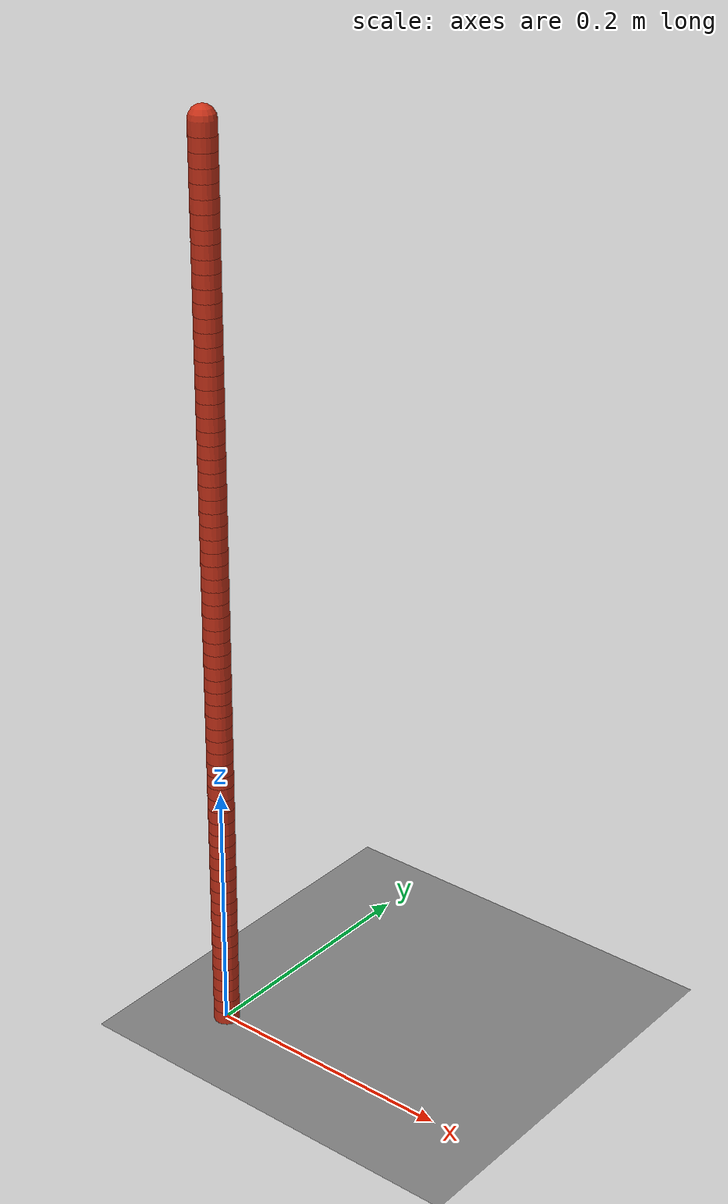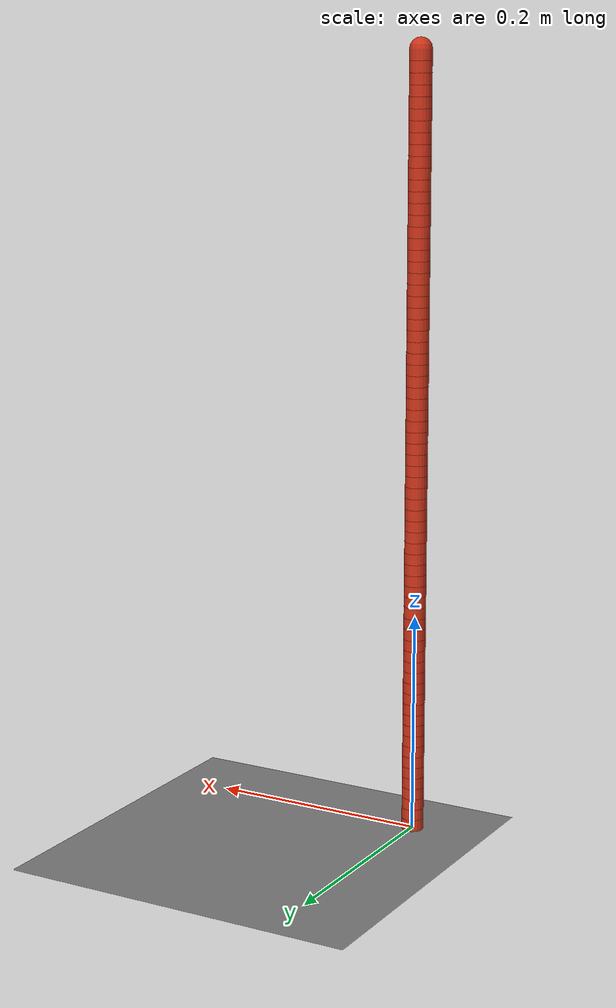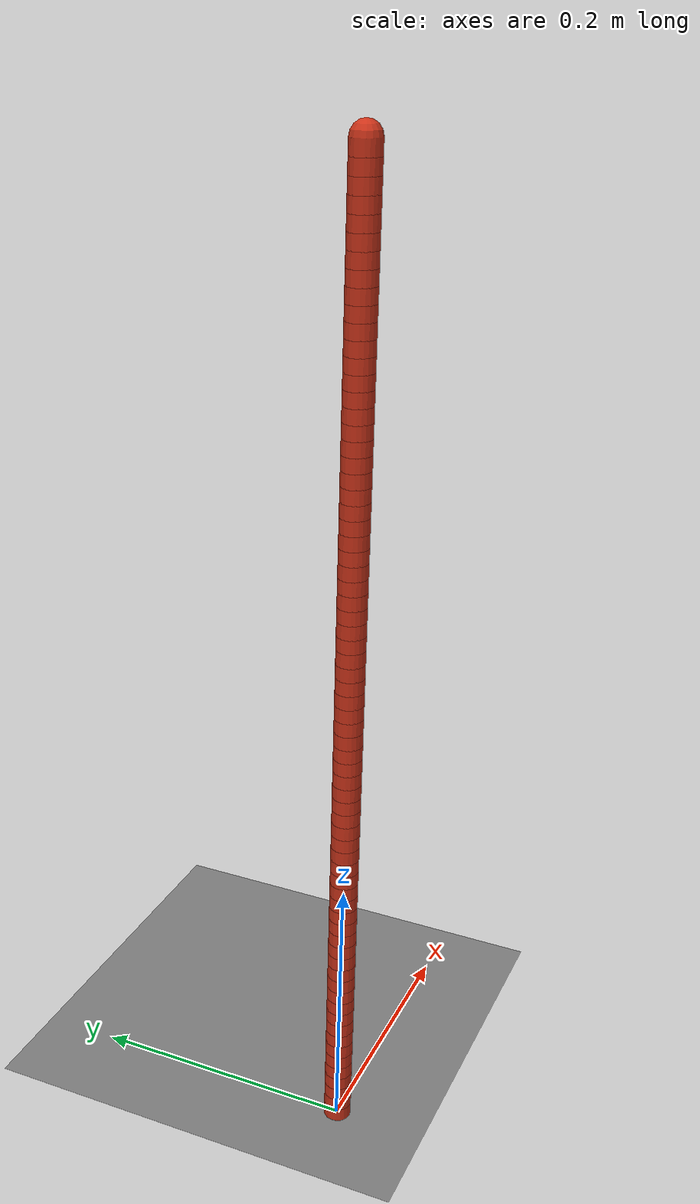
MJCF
<mujoco model="RopeNoComposite">
  <size nconmax="2000" njmax="20000" nstack="500000"/>

  <worldbody>
    <geom name="ground" type="plane" size="0 0 1"/>
      <body name="link_0" pos="0 0 0">
        <freejoint/>
        <geom type="capsule" fromto="0 0 0  0 0 0.01" size="0.01" friction="2.0 0.1 0.01" rgba="0.8 0.2 0.1 1"/>
        <body name="link_1" pos="0 0 0.01">
          <joint name="j_1" type="ball" damping="0.005"/>
          <geom type="capsule" fromto="0 0 0  0 0 0.01" size="0.01" friction="2.0 0.1 0.01" rgba="0.8 0.2 0.1 1"/>
          <body name="link_2" pos="0 0 0.01">
            <joint name="j_2" type="ball" damping="0.005"/>
            <geom type="capsule" fromto="0 0 0  0 0 0.01" size="0.01" friction="2.0 0.1 0.01" rgba="0.8 0.2 0.1 1"/>
            <body name="link_3" pos="0 0 0.01">
              <joint name="j_3" type="ball" damping="0.005"/>
              <geom type="capsule" fromto="0 0 0  0 0 0.01" size="0.01" friction="2.0 0.1 0.01" rgba="0.8 0.2 0.1 1"/>
              <body name="link_4" pos="0 0 0.01">
                <joint name="j_4" type="ball" damping="0.005"/>
                <geom type="capsule" fromto="0 0 0  0 0 0.01" size="0.01" friction="2.0 0.1 0.01" rgba="0.8 0.2 0.1 1"/>
                <body name="link_5" pos="0 0 0.01">
                  <joint name="j_5" type="ball" damping="0.005"/>
                  <geom type="capsule" fromto="0 0 0  0 0 0.01" size="0.01" friction="2.0 0.1 0.01" rgba="0.8 0.2 0.1 1"/>
                  <body name="link_6" pos="0 0 0.01">
                    <joint name="j_6" type="ball" damping="0.005"/>
                    <geom type="capsule" fromto="0 0 0  0 0 0.01" size="0.01" friction="2.0 0.1 0.01" rgba="0.8 0.2 0.1 1"/>
                    <body name="link_7" pos="0 0 0.01">
                      <joint name="j_7" type="ball" damping="0.005"/>
                      <geom type="capsule" fromto="0 0 0  0 0 0.01" size="0.01" friction="2.0 0.1 0.01" rgba="0.8 0.2 0.1 1"/>
                      <body name="link_8" pos="0 0 0.01">
                        <joint name="j_8" type="ball" damping="0.005"/>
                        <geom type="capsule" fromto="0 0 0  0 0 0.01" size="0.01" friction="2.0 0.1 0.01" rgba="0.8 0.2 0.1 1"/>
                        <body name="link_9" pos="0 0 0.01">
                          <joint name="j_9" type="ball" damping="0.005"/>
                          <geom type="capsule" fromto="0 0 0  0 0 0.01" size="0.01" friction="2.0 0.1 0.01" rgba="0.8 0.2 0.1 1"/>
                          <body name="link_10" pos="0 0 0.01">
                            <joint name="j_10" type="ball" damping="0.005"/>
                            <geom type="capsule" fromto="0 0 0  0 0 0.01" size="0.01" friction="2.0 0.1 0.01" rgba="0.8 0.2 0.1 1"/>
                            <body name="link_11" pos="0 0 0.01">
                              <joint name="j_11" type="ball" damping="0.005"/>
                              <geom type="capsule" fromto="0 0 0  0 0 0.01" size="0.01" friction="2.0 0.1 0.01" rgba="0.8 0.2 0.1 1"/>
                              <body name="link_12" pos="0 0 0.01">
                                <joint name="j_12" type="ball" damping="0.005"/>
                                <geom type="capsule" fromto="0 0 0  0 0 0.01" size="0.01" friction="2.0 0.1 0.01" rgba="0.8 0.2 0.1 1"/>
                                <body name="link_13" pos="0 0 0.01">
                                  <joint name="j_13" type="ball" damping="0.005"/>
                                  <geom type="capsule" fromto="0 0 0  0 0 0.01" size="0.01" friction="2.0 0.1 0.01" rgba="0.8 0.2 0.1 1"/>
                                  <body name="link_14" pos="0 0 0.01">
                                    <joint name="j_14" type="ball" damping="0.005"/>
                                    <geom type="capsule" fromto="0 0 0  0 0 0.01" size="0.01" friction="2.0 0.1 0.01" rgba="0.8 0.2 0.1 1"/>
                                    <body name="link_15" pos="0 0 0.01">
                                      <joint name="j_15" type="ball" damping="0.005"/>
                                      <geom type="capsule" fromto="0 0 0  0 0 0.01" size="0.01" friction="2.0 0.1 0.01" rgba="0.8 0.2 0.1 1"/>
                                      <body name="link_16" pos="0 0 0.01">
                                        <joint name="j_16" type="ball" damping="0.005"/>
                                        <geom type="capsule" fromto="0 0 0  0 0 0.01" size="0.01" friction="2.0 0.1 0.01" rgba="0.8 0.2 0.1 1"/>
                                        <body name="link_17" pos="0 0 0.01">
                                          <joint name="j_17" type="ball" damping="0.005"/>
                                          <geom type="capsule" fromto="0 0 0  0 0 0.01" size="0.01" friction="2.0 0.1 0.01" rgba="0.8 0.2 0.1 1"/>
                                          <body name="link_18" pos="0 0 0.01">
                                            <joint name="j_18" type="ball" damping="0.005"/>
                                            <geom type="capsule" fromto="0 0 0  0 0 0.01" size="0.01" friction="2.0 0.1 0.01" rgba="0.8 0.2 0.1 1"/>
                                            <body name="link_19" pos="0 0 0.01">
                                              <joint name="j_19" type="ball" damping="0.005"/>
                                              <geom type="capsule" fromto="0 0 0  0 0 0.01" size="0.01" friction="2.0 0.1 0.01" rgba="0.8 0.2 0.1 1"/>
                                              <body name="link_20" pos="0 0 0.01">
                                                <joint name="j_20" type="ball" damping="0.005"/>
                                                <geom type="capsule" fromto="0 0 0  0 0 0.01" size="0.01" friction="2.0 0.1 0.01" rgba="0.8 0.2 0.1 1"/>
                                                <body name="link_21" pos="0 0 0.01">
                                                  <joint name="j_21" type="ball" damping="0.005"/>
                                                  <geom type="capsule" fromto="0 0 0  0 0 0.01" size="0.01" friction="2.0 0.1 0.01" rgba="0.8 0.2 0.1 1"/>
                                                  <body name="link_22" pos="0 0 0.01">
                                                    <joint name="j_22" type="ball" damping="0.005"/>
                                                    <geom type="capsule" fromto="0 0 0  0 0 0.01" size="0.01" friction="2.0 0.1 0.01" rgba="0.8 0.2 0.1 1"/>
                                                    <body name="link_23" pos="0 0 0.01">
                                                      <joint name="j_23" type="ball" damping="0.005"/>
                                                      <geom type="capsule" fromto="0 0 0  0 0 0.01" size="0.01" friction="2.0 0.1 0.01" rgba="0.8 0.2 0.1 1"/>
                                                      <body name="link_24" pos="0 0 0.01">
                                                        <joint name="j_24" type="ball" damping="0.005"/>
                                                        <geom type="capsule" fromto="0 0 0  0 0 0.01" size="0.01" friction="2.0 0.1 0.01" rgba="0.8 0.2 0.1 1"/>
                                                        <body name="link_25" pos="0 0 0.01">
                                                          <joint name="j_25" type="ball" damping="0.005"/>
                                                          <geom type="capsule" fromto="0 0 0  0 0 0.01" size="0.01" friction="2.0 0.1 0.01" rgba="0.8 0.2 0.1 1"/>
                                                          <body name="link_26" pos="0 0 0.01">
                                                            <joint name="j_26" type="ball" damping="0.005"/>
                                                            <geom type="capsule" fromto="0 0 0  0 0 0.01" size="0.01" friction="2.0 0.1 0.01" rgba="0.8 0.2 0.1 1"/>
                                                            <body name="link_27" pos="0 0 0.01">
                                                              <joint name="j_27" type="ball" damping="0.005"/>
                                                              <geom type="capsule" fromto="0 0 0  0 0 0.01" size="0.01" friction="2.0 0.1 0.01" rgba="0.8 0.2 0.1 1"/>
                                                              <body name="link_28" pos="0 0 0.01">
                                                                <joint name="j_28" type="ball" damping="0.005"/>
                                                                <geom type="capsule" fromto="0 0 0  0 0 0.01" size="0.01" friction="2.0 0.1 0.01" rgba="0.8 0.2 0.1 1"/>
                                                                <body name="link_29" pos="0 0 0.01">
                                                                  <joint name="j_29" type="ball" damping="0.005"/>
                                                                  <geom type="capsule" fromto="0 0 0  0 0 0.01" size="0.01" friction="2.0 0.1 0.01" rgba="0.8 0.2 0.1 1"/>
                                                                  <body name="link_30" pos="0 0 0.01">
                                                                    <joint name="j_30" type="ball" damping="0.005"/>
                                                                    <geom type="capsule" fromto="0 0 0  0 0 0.01" size="0.01" friction="2.0 0.1 0.01" rgba="0.8 0.2 0.1 1"/>
                                                                    <body name="link_31" pos="0 0 0.01">
                                                                      <joint name="j_31" type="ball" damping="0.005"/>
                                                                      <geom type="capsule" fromto="0 0 0  0 0 0.01" size="0.01" friction="2.0 0.1 0.01" rgba="0.8 0.2 0.1 1"/>
                                                                      <body name="link_32" pos="0 0 0.01">
                                                                        <joint name="j_32" type="ball" damping="0.005"/>
                                                                        <geom type="capsule" fromto="0 0 0  0 0 0.01" size="0.01" friction="2.0 0.1 0.01" rgba="0.8 0.2 0.1 1"/>
                                                                        <body name="link_33" pos="0 0 0.01">
                                                                          <joint name="j_33" type="ball" damping="0.005"/>
                                                                          <geom type="capsule" fromto="0 0 0  0 0 0.01" size="0.01" friction="2.0 0.1 0.01" rgba="0.8 0.2 0.1 1"/>
                                                                          <body name="link_34" pos="0 0 0.01">
                                                                            <joint name="j_34" type="ball" damping="0.005"/>
                                                                            <geom type="capsule" fromto="0 0 0  0 0 0.01" size="0.01" friction="2.0 0.1 0.01" rgba="0.8 0.2 0.1 1"/>
                                                                            <body name="link_35" pos="0 0 0.01">
                                                                              <joint name="j_35" type="ball" damping="0.005"/>
                                                                              <geom type="capsule" fromto="0 0 0  0 0 0.01" size="0.01" friction="2.0 0.1 0.01" rgba="0.8 0.2 0.1 1"/>
                                                                              <body name="link_36" pos="0 0 0.01">
                                                                                <joint name="j_36" type="ball" damping="0.005"/>
                                                                                <geom type="capsule" fromto="0 0 0  0 0 0.01" size="0.01" friction="2.0 0.1 0.01" rgba="0.8 0.2 0.1 1"/>
                                                                                <body name="link_37" pos="0 0 0.01">
                                                                                  <joint name="j_37" type="ball" damping="0.005"/>
                                                                                  <geom type="capsule" fromto="0 0 0  0 0 0.01" size="0.01" friction="2.0 0.1 0.01" rgba="0.8 0.2 0.1 1"/>
                                                                                  <body name="link_38" pos="0 0 0.01">
                                                                                    <joint name="j_38" type="ball" damping="0.005"/>
                                                                                    <geom type="capsule" fromto="0 0 0  0 0 0.01" size="0.01" friction="2.0 0.1 0.01" rgba="0.8 0.2 0.1 1"/>
                                                                                    <body name="link_39" pos="0 0 0.01">
                                                                                      <joint name="j_39" type="ball" damping="0.005"/>
                                                                                      <geom type="capsule" fromto="0 0 0  0 0 0.01" size="0.01" friction="2.0 0.1 0.01" rgba="0.8 0.2 0.1 1"/>
                                                                                      <body name="link_40" pos="0 0 0.01">
                                                                                        <joint name="j_40" type="ball" damping="0.005"/>
                                                                                        <geom type="capsule" fromto="0 0 0  0 0 0.01" size="0.01" friction="2.0 0.1 0.01" rgba="0.8 0.2 0.1 1"/>
                                                                                        <body name="link_41" pos="0 0 0.01">
                                                                                          <joint name="j_41" type="ball" damping="0.005"/>
                                                                                          <geom type="capsule" fromto="0 0 0  0 0 0.01" size="0.01" friction="2.0 0.1 0.01" rgba="0.8 0.2 0.1 1"/>
                                                                                          <body name="link_42" pos="0 0 0.01">
                                                                                            <joint name="j_42" type="ball" damping="0.005"/>
                                                                                            <geom type="capsule" fromto="0 0 0  0 0 0.01" size="0.01" friction="2.0 0.1 0.01" rgba="0.8 0.2 0.1 1"/>
                                                                                            <body name="link_43" pos="0 0 0.01">
                                                                                              <joint name="j_43" type="ball" damping="0.005"/>
                                                                                              <geom type="capsule" fromto="0 0 0  0 0 0.01" size="0.01" friction="2.0 0.1 0.01" rgba="0.8 0.2 0.1 1"/>
                                                                                              <body name="link_44" pos="0 0 0.01">
                                                                                                <joint name="j_44" type="ball" damping="0.005"/>
                                                                                                <geom type="capsule" fromto="0 0 0  0 0 0.01" size="0.01" friction="2.0 0.1 0.01" rgba="0.8 0.2 0.1 1"/>
                                                                                                <body name="link_45" pos="0 0 0.01">
                                                                                                  <joint name="j_45" type="ball" damping="0.005"/>
                                                                                                  <geom type="capsule" fromto="0 0 0  0 0 0.01" size="0.01" friction="2.0 0.1 0.01" rgba="0.8 0.2 0.1 1"/>
                                                                                                  <body name="link_46" pos="0 0 0.01">
                                                                                                    <joint name="j_46" type="ball" damping="0.005"/>
                                                                                                    <geom type="capsule" fromto="0 0 0  0 0 0.01" size="0.01" friction="2.0 0.1 0.01" rgba="0.8 0.2 0.1 1"/>
                                                                                                    <body name="link_47" pos="0 0 0.01">
                                                                                                      <joint name="j_47" type="ball" damping="0.005"/>
                                                                                                      <geom type="capsule" fromto="0 0 0  0 0 0.01" size="0.01" friction="2.0 0.1 0.01" rgba="0.8 0.2 0.1 1"/>
                                                                                                      <body name="link_48" pos="0 0 0.01">
                                                                                                        <joint name="j_48" type="ball" damping="0.005"/>
                                                                                                        <geom type="capsule" fromto="0 0 0  0 0 0.01" size="0.01" friction="2.0 0.1 0.01" rgba="0.8 0.2 0.1 1"/>
                                                                                                        <body name="link_49" pos="0 0 0.01">
                                                                                                          <joint name="j_49" type="ball" damping="0.005"/>
                                                                                                          <geom type="capsule" fromto="0 0 0  0 0 0.01" size="0.01" friction="2.0 0.1 0.01" rgba="0.8 0.2 0.1 1"/>
                                                                                                          <body name="link_50" pos="0 0 0.01">
                                                                                                            <joint name="j_50" type="ball" damping="0.005"/>
                                                                                                            <geom type="capsule" fromto="0 0 0  0 0 0.01" size="0.01" friction="2.0 0.1 0.01" rgba="0.8 0.2 0.1 1"/>
                                                                                                            <body name="link_51" pos="0 0 0.01">
                                                                                                              <joint name="j_51" type="ball" damping="0.005"/>
                                                                                                              <geom type="capsule" fromto="0 0 0  0 0 0.01" size="0.01" friction="2.0 0.1 0.01" rgba="0.8 0.2 0.1 1"/>
                                                                                                              <body name="link_52" pos="0 0 0.01">
                                                                                                                <joint name="j_52" type="ball" damping="0.005"/>
                                                                                                                <geom type="capsule" fromto="0 0 0  0 0 0.01" size="0.01" friction="2.0 0.1 0.01" rgba="0.8 0.2 0.1 1"/>
                                                                                                                <body name="link_53" pos="0 0 0.01">
                                                                                                                  <joint name="j_53" type="ball" damping="0.005"/>
                                                                                                                  <geom type="capsule" fromto="0 0 0  0 0 0.01" size="0.01" friction="2.0 0.1 0.01" rgba="0.8 0.2 0.1 1"/>
                                                                                                                  <body name="link_54" pos="0 0 0.01">
                                                                                                                    <joint name="j_54" type="ball" damping="0.005"/>
                                                                                                                    <geom type="capsule" fromto="0 0 0  0 0 0.01" size="0.01" friction="2.0 0.1 0.01" rgba="0.8 0.2 0.1 1"/>
                                                                                                                    <body name="link_55" pos="0 0 0.01">
                                                                                                                      <joint name="j_55" type="ball" damping="0.005"/>
                                                                                                                      <geom type="capsule" fromto="0 0 0  0 0 0.01" size="0.01" friction="2.0 0.1 0.01" rgba="0.8 0.2 0.1 1"/>
                                                                                                                      <body name="link_56" pos="0 0 0.01">
                                                                                                                        <joint name="j_56" type="ball" damping="0.005"/>
                                                                                                                        <geom type="capsule" fromto="0 0 0  0 0 0.01" size="0.01" friction="2.0 0.1 0.01" rgba="0.8 0.2 0.1 1"/>
                                                                                                                        <body name="link_57" pos="0 0 0.01">
                                                                                                                          <joint name="j_57" type="ball" damping="0.005"/>
                                                                                                                          <geom type="capsule" fromto="0 0 0  0 0 0.01" size="0.01" friction="2.0 0.1 0.01" rgba="0.8 0.2 0.1 1"/>
                                                                                                                          <body name="link_58" pos="0 0 0.01">
                                                                                                                            <joint name="j_58" type="ball" damping="0.005"/>
                                                                                                                            <geom type="capsule" fromto="0 0 0  0 0 0.01" size="0.01" friction="2.0 0.1 0.01" rgba="0.8 0.2 0.1 1"/>
                                                                                                                            <body name="link_59" pos="0 0 0.01">
                                                                                                                              <joint name="j_59" type="ball" damping="0.005"/>
                                                                                                                              <geom type="capsule" fromto="0 0 0  0 0 0.01" size="0.01" friction="2.0 0.1 0.01" rgba="0.8 0.2 0.1 1"/>
                                                                                                                              <body name="link_60" pos="0 0 0.01">
                                                                                                                                <joint name="j_60" type="ball" damping="0.005"/>
                                                                                                                                <geom type="capsule" fromto="0 0 0  0 0 0.01" size="0.01" friction="2.0 0.1 0.01" rgba="0.8 0.2 0.1 1"/>
                                                                                                                                <body name="link_61" pos="0 0 0.01">
                                                                                                                                  <joint name="j_61" type="ball" damping="0.005"/>
                                                                                                                                  <geom type="capsule" fromto="0 0 0  0 0 0.01" size="0.01" friction="2.0 0.1 0.01" rgba="0.8 0.2 0.1 1"/>
                                                                                                                                  <body name="link_62" pos="0 0 0.01">
                                                                                                                                    <joint name="j_62" type="ball" damping="0.005"/>
                                                                                                                                    <geom type="capsule" fromto="0 0 0  0 0 0.01" size="0.01" friction="2.0 0.1 0.01" rgba="0.8 0.2 0.1 1"/>
                                                                                                                                    <body name="link_63" pos="0 0 0.01">
                                                                                                                                      <joint name="j_63" type="ball" damping="0.005"/>
                                                                                                                                      <geom type="capsule" fromto="0 0 0  0 0 0.01" size="0.01" friction="2.0 0.1 0.01" rgba="0.8 0.2 0.1 1"/>
                                                                                                                                      <body name="link_64" pos="0 0 0.01">
                                                                                                                                        <joint name="j_64" type="ball" damping="0.005"/>
                                                                                                                                        <geom type="capsule" fromto="0 0 0  0 0 0.01" size="0.01" friction="2.0 0.1 0.01" rgba="0.8 0.2 0.1 1"/>
                                                                                                                                        <body name="link_65" pos="0 0 0.01">
                                                                                                                                          <joint name="j_65" type="ball" damping="0.005"/>
                                                                                                                                          <geom type="capsule" fromto="0 0 0  0 0 0.01" size="0.01" friction="2.0 0.1 0.01" rgba="0.8 0.2 0.1 1"/>
                                                                                                                                          <body name="link_66" pos="0 0 0.01">
                                                                                                                                            <joint name="j_66" type="ball" damping="0.005"/>
                                                                                                                                            <geom type="capsule" fromto="0 0 0  0 0 0.01" size="0.01" friction="2.0 0.1 0.01" rgba="0.8 0.2 0.1 1"/>
                                                                                                                                            <body name="link_67" pos="0 0 0.01">
                                                                                                                                              <joint name="j_67" type="ball" damping="0.005"/>
                                                                                                                                              <geom type="capsule" fromto="0 0 0  0 0 0.01" size="0.01" friction="2.0 0.1 0.01" rgba="0.8 0.2 0.1 1"/>
                                                                                                                                              <body name="link_68" pos="0 0 0.01">
                                                                                                                                                <joint name="j_68" type="ball" damping="0.005"/>
                                                                                                                                                <geom type="capsule" fromto="0 0 0  0 0 0.01" size="0.01" friction="2.0 0.1 0.01" rgba="0.8 0.2 0.1 1"/>
                                                                                                                                                <body name="link_69" pos="0 0 0.01">
                                                                                                                                                  <joint name="j_69" type="ball" damping="0.005"/>
                                                                                                                                                  <geom type="capsule" fromto="0 0 0  0 0 0.01" size="0.01" friction="2.0 0.1 0.01" rgba="0.8 0.2 0.1 1"/>
                                                                                                                                                </body>
                                                                                                                                              </body>
                                                                                                                                            </body>
                                                                                                                                          </body>
                                                                                                                                        </body>
                                                                                                                                      </body>
                                                                                                                                    </body>
                                                                                                                                  </body>
                                                                                                                                </body>
                                                                                                                              </body>
                                                                                                                            </body>
                                                                                                                          </body>
                                                                                                                        </body>
                                                                                                                      </body>
                                                                                                                    </body>
                                                                                                                  </body>
                                                                                                                </body>
                                                                                                              </body>
                                                                                                            </body>
                                                                                                          </body>
                                                                                                        </body>
                                                                                                      </body>
                                                                                                    </body>
                                                                                                  </body>
                                                                                                </body>
                                                                                              </body>
                                                                                            </body>
                                                                                          </body>
                                                                                        </body>
                                                                                      </body>
                                                                                    </body>
                                                                                  </body>
                                                                                </body>
                                                                              </body>
                                                                            </body>
                                                                          </body>
                                                                        </body>
                                                                      </body>
                                                                    </body>
                                                                  </body>
                                                                </body>
                                                              </body>
                                                            </body>
                                                          </body>
                                                        </body>
                                                      </body>
                                                    </body>
                                                  </body>
                                                </body>
                                              </body>
                                            </body>
                                          </body>
                                        </body>
                                      </body>
                                    </body>
                                  </body>
                                </body>
                              </body>
                            </body>
                          </body>
                        </body>
                      </body>
                    </body>
                  </body>
                </body>
              </body>
            </body>
          </body>
        </body>
      </body>
  </worldbody>
</mujoco>
